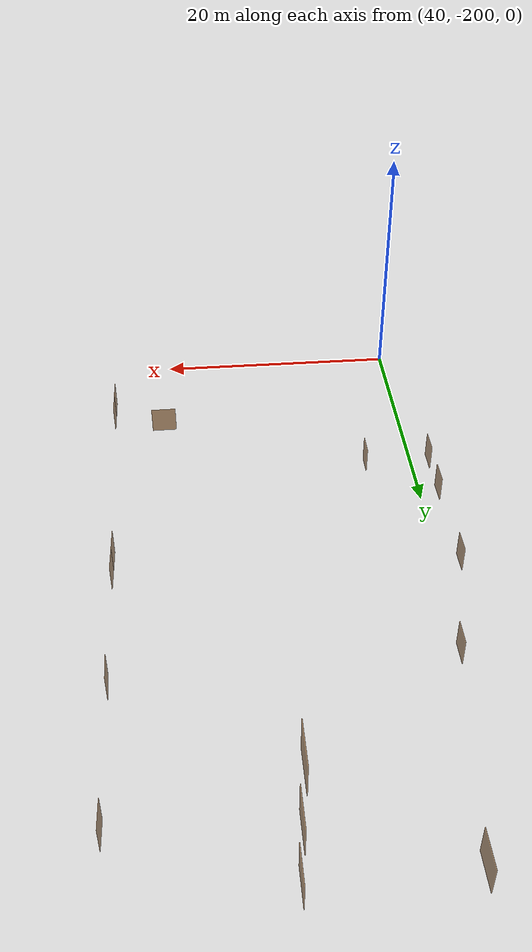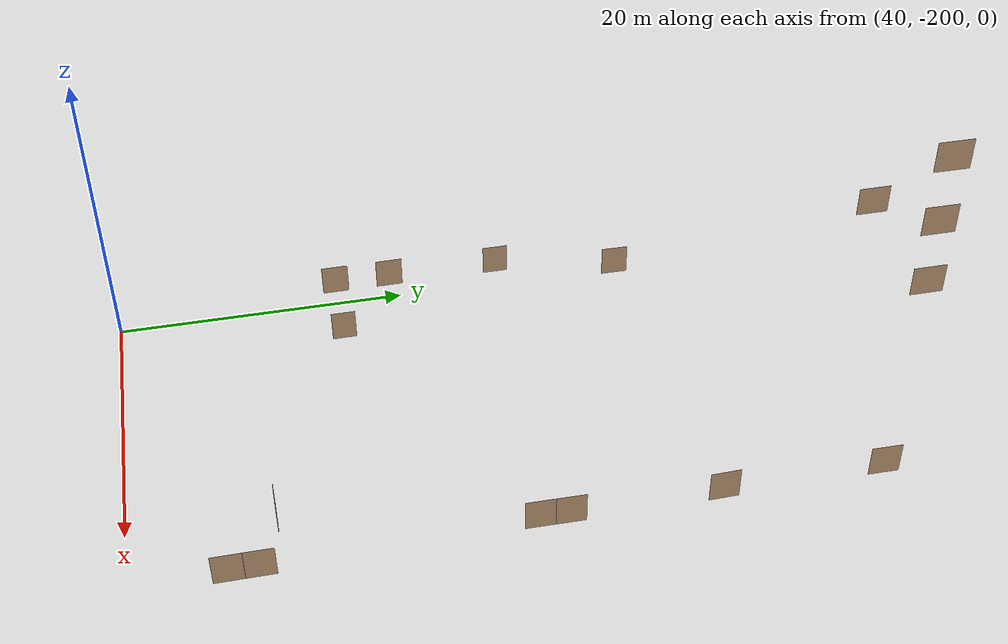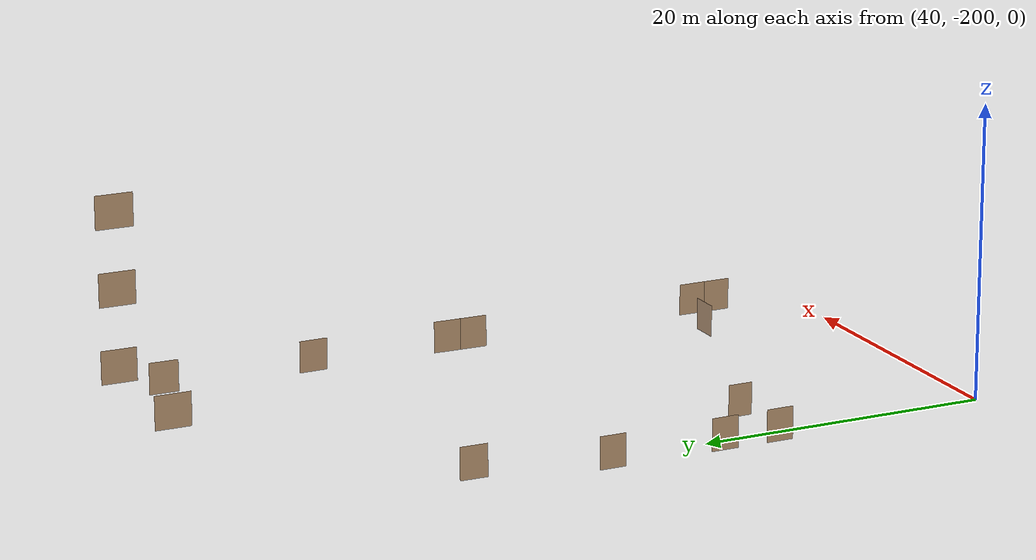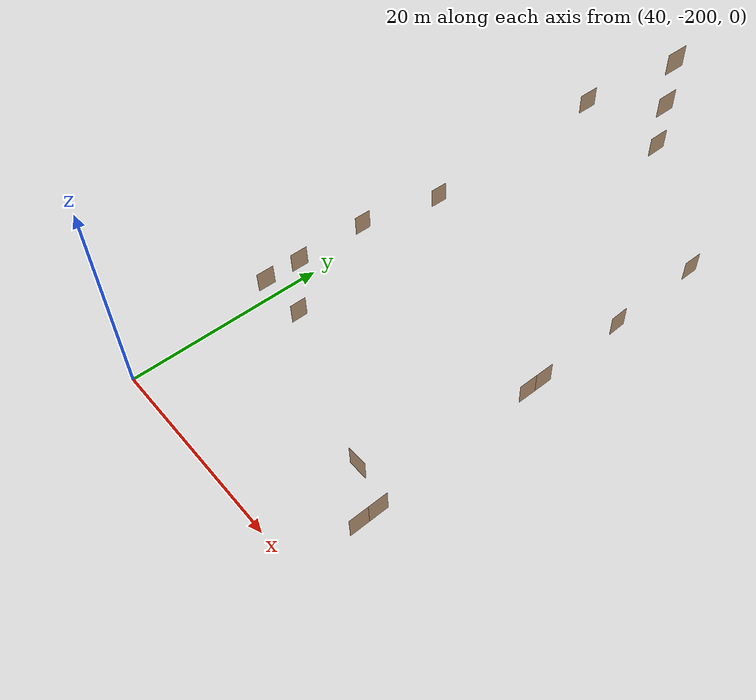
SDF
<sdf version="1.7">
 <world name="sim_world">
  <model name="puerta39">
   <pose>64.41179523894755 -174.04589224986574 0.0 0 0 -1.5864504981439664</pose>
   <link name="right">
    <pose>0.9644818736637308 0 1.11 0 0 0</pose>
    <visual name="right_visual">
     <geometry><box><size>1.9189637473274617 0.03 2.2</size></box></geometry>
     <material>
      <ambient>0.5 0.25 0 0.6</ambient>
      <diffuse>0.5 0.25 0 0.6</diffuse>
      <pbr><metal><metalness>0.0</metalness></metal></pbr>
     </material>
    </visual>
    <collision name="right_collision">
     <geometry><box><size>1.9189637473274617 0.03 2.2</size></box></geometry>
     <surface><contact><collide_bitmask>0x02</collide_bitmask></contact></surface>
    </collision>
    <inertial>
     <mass>50.0</mass>
     <inertia><ixx>20.17041666666667</ixx><iyy>35.5100910981544</iyy><izz>15.347174431487726</izz></inertia>
    </inertial>
   </link>
   <joint name="right_joint" type="revolute">
    <parent>world</parent>
    <child>right</child>
    <axis><xyz>0 0 -1</xyz><limit><lower>0</lower><upper>1.57</upper></limit></axis>
    <pose>0.9644818736637308 0 0 0 0 0</pose>
   </joint>
   <link name="left">
    <pose>-0.9644818736637308 0 1.11 0 0 0</pose>
    <visual name="left_visual">
     <geometry><box><size>1.9189637473274617 0.03 2.2</size></box></geometry>
     <material>
      <ambient>0.5 0.25 0 0.6</ambient>
      <diffuse>0.5 0.25 0 0.6</diffuse>
      <pbr><metal><metalness>0.0</metalness></metal></pbr>
     </material>
    </visual>
    <collision name="left_collision">
     <geometry><box><size>1.9189637473274617 0.03 2.2</size></box></geometry>
     <surface><contact><collide_bitmask>0x02</collide_bitmask></contact></surface>
    </collision>
    <inertial>
     <mass>50.0</mass>
     <inertia><ixx>20.17041666666667</ixx><iyy>35.5100910981544</iyy><izz>15.347174431487726</izz></inertia>
    </inertial>
   </link>
   <joint name="left_joint" type="revolute">
    <parent>world</parent>
    <child>left</child>
    <axis><xyz>0 0 -1</xyz><limit><lower>-1.57</lower><upper>0</upper></limit></axis>
    <pose>-0.9644818736637308 0 0 0 0 0</pose>
   </joint>
   <plugin name="register_component" filename="libregister_component.so">
    <component name="Door">
     <v_max_door>0.5</v_max_door>
     <a_max_door>0.3</a_max_door>
     <a_nom_door>0.15</a_nom_door>
     <dx_min_door>0.01</dx_min_door>
     <f_max_door>500.0</f_max_door>
     <ros_interface>true</ros_interface>
     <door name="puerta39" type="DoubleSwingDoor" left_joint_name="left_joint" right_joint_name="right_joint"/>
    </component>
   </plugin>
  </model>
  <model name="puerta40">
   <pose>64.78815106497225 -193.0206192947915 0.0 0 0 1.5706653632783407</pose>
   <link name="right">
    <pose>0.9566851701874391 0 1.11 0 0 0</pose>
    <visual name="right_visual">
     <geometry><box><size>1.9033703403748783 0.03 2.2</size></box></geometry>
     <material>
      <ambient>0.5 0.25 0 0.6</ambient>
      <diffuse>0.5 0.25 0 0.6</diffuse>
      <pbr><metal><metalness>0.0</metalness></metal></pbr>
     </material>
    </visual>
    <collision name="right_collision">
     <geometry><box><size>1.9033703403748783 0.03 2.2</size></box></geometry>
     <surface><contact><collide_bitmask>0x02</collide_bitmask></contact></surface>
    </collision>
    <inertial>
     <mass>50.0</mass>
     <inertia><ixx>20.17041666666667</ixx><iyy>35.26174438591159</iyy><izz>15.098827719244918</izz></inertia>
    </inertial>
   </link>
   <joint name="right_joint" type="revolute">
    <parent>world</parent>
    <child>right</child>
    <axis><xyz>0 0 -1</xyz><limit><lower>0</lower><upper>1.57</upper></limit></axis>
    <pose>0.9566851701874391 0 0 0 0 0</pose>
   </joint>
   <link name="left">
    <pose>-0.9566851701874391 0 1.11 0 0 0</pose>
    <visual name="left_visual">
     <geometry><box><size>1.9033703403748783 0.03 2.2</size></box></geometry>
     <material>
      <ambient>0.5 0.25 0 0.6</ambient>
      <diffuse>0.5 0.25 0 0.6</diffuse>
      <pbr><metal><metalness>0.0</metalness></metal></pbr>
     </material>
    </visual>
    <collision name="left_collision">
     <geometry><box><size>1.9033703403748783 0.03 2.2</size></box></geometry>
     <surface><contact><collide_bitmask>0x02</collide_bitmask></contact></surface>
    </collision>
    <inertial>
     <mass>50.0</mass>
     <inertia><ixx>20.17041666666667</ixx><iyy>35.26174438591159</iyy><izz>15.098827719244918</izz></inertia>
    </inertial>
   </link>
   <joint name="left_joint" type="revolute">
    <parent>world</parent>
    <child>left</child>
    <axis><xyz>0 0 -1</xyz><limit><lower>-1.57</lower><upper>0</upper></limit></axis>
    <pose>-0.9566851701874391 0 0 0 0 0</pose>
   </joint>
   <plugin name="register_component" filename="libregister_component.so">
    <component name="Door">
     <v_max_door>0.5</v_max_door>
     <a_max_door>0.3</a_max_door>
     <a_nom_door>0.15</a_nom_door>
     <dx_min_door>0.01</dx_min_door>
     <f_max_door>500.0</f_max_door>
     <ros_interface>true</ros_interface>
     <door name="puerta40" type="DoubleSwingDoor" left_joint_name="left_joint" right_joint_name="right_joint"/>
    </component>
   </plugin>
  </model>
  <model name="puerta72">
   <pose>64.41070341865044 -152.64116699480937 0.0 0 0 -1.5859111699131794</pose>
   <link name="right">
    <pose>0 0 1.11 0 0 0</pose>
    <visual name="right_visual">
     <geometry><box><size>2.0363407816911288 0.03 2.2</size></box></geometry>
     <material>
      <ambient>0.5 0.25 0 0.6</ambient>
      <diffuse>0.5 0.25 0 0.6</diffuse>
      <pbr><metal><metalness>0.0</metalness></metal></pbr>
     </material>
    </visual>
    <collision name="right_collision">
     <geometry><box><size>2.0363407816911288 0.03 2.2</size></box></geometry>
     <surface><contact><collide_bitmask>0x02</collide_bitmask></contact></surface>
    </collision>
    <inertial>
     <mass>50.0</mass>
     <inertia><ixx>20.17041666666667</ixx><iyy>37.444515746576826</iyy><izz>17.28159907991016</izz></inertia>
    </inertial>
   </link>
   <joint name="right_joint" type="revolute">
    <parent>world</parent>
    <child>right</child>
    <axis><xyz>0 0 -1</xyz><limit><lower>0</lower><upper>1.57</upper></limit></axis>
    <pose>1.0231703908455643 0 0 0 0 0</pose>
   </joint>
   <plugin name="register_component" filename="libregister_component.so">
    <component name="Door">
     <v_max_door>0.5</v_max_door>
     <a_max_door>0.3</a_max_door>
     <a_nom_door>0.15</a_nom_door>
     <dx_min_door>0.01</dx_min_door>
     <f_max_door>500.0</f_max_door>
     <ros_interface>true</ros_interface>
     <door name="puerta72" type="SwingDoor" left_joint_name="empty_joint" right_joint_name="right_joint"/>
    </component>
   </plugin>
  </model>
  <model name="puerta73">
   <pose>64.4186146411312 -163.26044388759618 0.0 0 0 -1.547284805781661</pose>
   <link name="right">
    <pose>0 0 1.11 0 0 0</pose>
    <visual name="right_visual">
     <geometry><box><size>1.9786290936284832 0.03 2.2</size></box></geometry>
     <material>
      <ambient>0.5 0.25 0 0.6</ambient>
      <diffuse>0.5 0.25 0 0.6</diffuse>
      <pbr><metal><metalness>0.0</metalness></metal></pbr>
     </material>
    </visual>
    <collision name="right_collision">
     <geometry><box><size>1.9786290936284832 0.03 2.2</size></box></geometry>
     <surface><contact><collide_bitmask>0x02</collide_bitmask></contact></surface>
    </collision>
    <inertial>
     <mass>50.0</mass>
     <inertia><ixx>20.17041666666667</ixx><iyy>36.479054542304475</iyy><izz>16.316137875637803</izz></inertia>
    </inertial>
   </link>
   <joint name="right_joint" type="revolute">
    <parent>world</parent>
    <child>right</child>
    <axis><xyz>0 0 -1</xyz><limit><lower>0</lower><upper>1.57</upper></limit></axis>
    <pose>0.9943145468142416 0 0 0 0 0</pose>
   </joint>
   <plugin name="register_component" filename="libregister_component.so">
    <component name="Door">
     <v_max_door>0.5</v_max_door>
     <a_max_door>0.3</a_max_door>
     <a_nom_door>0.15</a_nom_door>
     <dx_min_door>0.01</dx_min_door>
     <f_max_door>500.0</f_max_door>
     <ros_interface>true</ros_interface>
     <door name="puerta73" type="SwingDoor" left_joint_name="empty_joint" right_joint_name="right_joint"/>
    </component>
   </plugin>
  </model>
  <model name="puerta74">
   <pose>40.54846966171469 -164.11424735994274 0.0 0 0 -1.582914761738406</pose>
   <link name="right">
    <pose>0 0 1.11 0 0 0</pose>
    <visual name="right_visual">
     <geometry><box><size>1.8776274167656888 0.03 2.2</size></box></geometry>
     <material>
      <ambient>0.5 0.25 0 0.6</ambient>
      <diffuse>0.5 0.25 0 0.6</diffuse>
      <pbr><metal><metalness>0.0</metalness></metal></pbr>
     </material>
    </visual>
    <collision name="right_collision">
     <geometry><box><size>1.8776274167656888 0.03 2.2</size></box></geometry>
     <surface><contact><collide_bitmask>0x02</collide_bitmask></contact></surface>
    </collision>
    <inertial>
     <mass>50.0</mass>
     <inertia><ixx>20.17041666666667</ixx><iyy>34.85618631745914</iyy><izz>14.693269650792475</izz></inertia>
    </inertial>
   </link>
   <joint name="right_joint" type="revolute">
    <parent>world</parent>
    <child>right</child>
    <axis><xyz>0 0 -1</xyz><limit><lower>0</lower><upper>1.57</upper></limit></axis>
    <pose>0.9438137083828444 0 0 0 0 0</pose>
   </joint>
   <plugin name="register_component" filename="libregister_component.so">
    <component name="Door">
     <v_max_door>0.5</v_max_door>
     <a_max_door>0.3</a_max_door>
     <a_nom_door>0.15</a_nom_door>
     <dx_min_door>0.01</dx_min_door>
     <f_max_door>500.0</f_max_door>
     <ros_interface>true</ros_interface>
     <door name="puerta74" type="SwingDoor" left_joint_name="empty_joint" right_joint_name="right_joint"/>
    </component>
   </plugin>
  </model>
  <model name="puerta75">
   <pose>38.571684267048504 -172.71329872919276 0.0 0 0 -1.5707963267948966</pose>
   <link name="right">
    <pose>0 0 1.11 0 0 0</pose>
    <visual name="right_visual">
     <geometry><box><size>1.7947610524431548 0.03 2.2</size></box></geometry>
     <material>
      <ambient>0.5 0.25 0 0.6</ambient>
      <diffuse>0.5 0.25 0 0.6</diffuse>
      <pbr><metal><metalness>0.0</metalness></metal></pbr>
     </material>
    </visual>
    <collision name="right_collision">
     <geometry><box><size>1.7947610524431548 0.03 2.2</size></box></geometry>
     <surface><contact><collide_bitmask>0x02</collide_bitmask></contact></surface>
    </collision>
    <inertial>
     <mass>50.0</mass>
     <inertia><ixx>20.17041666666667</ixx><iyy>33.58819681402859</iyy><izz>13.42528014736192</izz></inertia>
    </inertial>
   </link>
   <joint name="right_joint" type="revolute">
    <parent>world</parent>
    <child>right</child>
    <axis><xyz>0 0 1</xyz><limit><lower>0</lower><upper>1.57</upper></limit></axis>
    <pose>0.9023805262215774 0 0 0 0 0</pose>
   </joint>
   <plugin name="register_component" filename="libregister_component.so">
    <component name="Door">
     <v_max_door>0.5</v_max_door>
     <a_max_door>0.3</a_max_door>
     <a_nom_door>0.15</a_nom_door>
     <dx_min_door>0.01</dx_min_door>
     <f_max_door>500.0</f_max_door>
     <ros_interface>true</ros_interface>
     <door name="puerta75" type="SwingDoor" left_joint_name="empty_joint" right_joint_name="right_joint"/>
    </component>
   </plugin>
  </model>
  <model name="puerta76">
   <pose>38.56130302487918 -180.61496330767852 0.0 0 0 -1.5651657985092033</pose>
   <link name="right">
    <pose>0 0 1.11 0 0 0</pose>
    <visual name="right_visual">
     <geometry><box><size>1.8718984542827075 0.03 2.2</size></box></geometry>
     <material>
      <ambient>0.5 0.25 0 0.6</ambient>
      <diffuse>0.5 0.25 0 0.6</diffuse>
      <pbr><metal><metalness>0.0</metalness></metal></pbr>
     </material>
    </visual>
    <collision name="right_collision">
     <geometry><box><size>1.8718984542827075 0.03 2.2</size></box></geometry>
     <surface><contact><collide_bitmask>0x02</collide_bitmask></contact></surface>
    </collision>
    <inertial>
     <mass>50.0</mass>
     <inertia><ixx>20.17041666666667</ixx><iyy>34.766682596441626</iyy><izz>14.603765929774958</izz></inertia>
    </inertial>
   </link>
   <joint name="right_joint" type="revolute">
    <parent>world</parent>
    <child>right</child>
    <axis><xyz>0 0 1</xyz><limit><lower>0</lower><upper>1.57</upper></limit></axis>
    <pose>0.9409492271413538 0 0 0 0 0</pose>
   </joint>
   <plugin name="register_component" filename="libregister_component.so">
    <component name="Door">
     <v_max_door>0.5</v_max_door>
     <a_max_door>0.3</a_max_door>
     <a_nom_door>0.15</a_nom_door>
     <dx_min_door>0.01</dx_min_door>
     <f_max_door>500.0</f_max_door>
     <ros_interface>true</ros_interface>
     <door name="puerta76" type="SwingDoor" left_joint_name="empty_joint" right_joint_name="right_joint"/>
    </component>
   </plugin>
  </model>
  <model name="puerta77">
   <pose>38.55967424378021 -184.54864864864865 0.0 0 0 1.5741072561138192</pose>
   <link name="right">
    <pose>0 0 1.11 0 0 0</pose>
    <visual name="right_visual">
     <geometry><box><size>1.8604595094200334 0.03 2.2</size></box></geometry>
     <material>
      <ambient>0.5 0.25 0 0.6</ambient>
      <diffuse>0.5 0.25 0 0.6</diffuse>
      <pbr><metal><metalness>0.0</metalness></metal></pbr>
     </material>
    </visual>
    <collision name="right_collision">
     <geometry><box><size>1.8604595094200334 0.03 2.2</size></box></geometry>
     <surface><contact><collide_bitmask>0x02</collide_bitmask></contact></surface>
    </collision>
    <inertial>
     <mass>50.0</mass>
     <inertia><ixx>20.17041666666667</ixx><iyy>34.58878994246431</iyy><izz>14.425873275797633</izz></inertia>
    </inertial>
   </link>
   <joint name="right_joint" type="revolute">
    <parent>world</parent>
    <child>right</child>
    <axis><xyz>0 0 -1</xyz><limit><lower>0</lower><upper>1.57</upper></limit></axis>
    <pose>0.9352297547100167 0 0 0 0 0</pose>
   </joint>
   <plugin name="register_component" filename="libregister_component.so">
    <component name="Door">
     <v_max_door>0.5</v_max_door>
     <a_max_door>0.3</a_max_door>
     <a_nom_door>0.15</a_nom_door>
     <dx_min_door>0.01</dx_min_door>
     <f_max_door>500.0</f_max_door>
     <ros_interface>true</ros_interface>
     <door name="puerta77" type="SwingDoor" left_joint_name="empty_joint" right_joint_name="right_joint"/>
    </component>
   </plugin>
  </model>
  <model name="puerta78">
   <pose>43.88469661714695 -184.56318238768569 0.0 0 0 1.5707963267948966</pose>
   <link name="right">
    <pose>0 0 1.11 0 0 0</pose>
    <visual name="right_visual">
     <geometry><box><size>1.6649955253266364 0.03 2.2</size></box></geometry>
     <material>
      <ambient>0.5 0.25 0 0.6</ambient>
      <diffuse>0.5 0.25 0 0.6</diffuse>
      <pbr><metal><metalness>0.0</metalness></metal></pbr>
     </material>
    </visual>
    <collision name="right_collision">
     <geometry><box><size>1.6649955253266364 0.03 2.2</size></box></geometry>
     <surface><contact><collide_bitmask>0x02</collide_bitmask></contact></surface>
    </collision>
    <inertial>
     <mass>50.0</mass>
     <inertia><ixx>20.17041666666667</ixx><iyy>31.717542080657182</iyy><izz>11.55462541399051</izz></inertia>
    </inertial>
   </link>
   <joint name="right_joint" type="revolute">
    <parent>world</parent>
    <child>right</child>
    <axis><xyz>0 0 1</xyz><limit><lower>0</lower><upper>1.57</upper></limit></axis>
    <pose>0.8374977626633182 0 0 0 0 0</pose>
   </joint>
   <plugin name="register_component" filename="libregister_component.so">
    <component name="Door">
     <v_max_door>0.5</v_max_door>
     <a_max_door>0.3</a_max_door>
     <a_nom_door>0.15</a_nom_door>
     <dx_min_door>0.01</dx_min_door>
     <f_max_door>500.0</f_max_door>
     <ros_interface>true</ros_interface>
     <door name="puerta78" type="SwingDoor" left_joint_name="empty_joint" right_joint_name="right_joint"/>
    </component>
   </plugin>
  </model>
  <model name="puerta79">
   <pose>60.52491498120638 -190.7836405942366 0.0 0 0 -3.1347968287610044</pose>
   <link name="right">
    <pose>0 0 1.11 0 0 0</pose>
    <visual name="right_visual">
     <geometry><box><size>2.0338273991441067 0.03 2.2</size></box></geometry>
     <material>
      <ambient>0.5 0.25 0 0.6</ambient>
      <diffuse>0.5 0.25 0 0.6</diffuse>
      <pbr><metal><metalness>0.0</metalness></metal></pbr>
     </material>
    </visual>
    <collision name="right_collision">
     <geometry><box><size>2.0338273991441067 0.03 2.2</size></box></geometry>
     <surface><contact><collide_bitmask>0x02</collide_bitmask></contact></surface>
    </collision>
    <inertial>
     <mass>50.0</mass>
     <inertia><ixx>20.17041666666667</ixx><iyy>37.40189120628868</iyy><izz>17.238974539622006</izz></inertia>
    </inertial>
   </link>
   <joint name="right_joint" type="revolute">
    <parent>world</parent>
    <child>right</child>
    <axis><xyz>0 0 -1</xyz><limit><lower>0</lower><upper>1.57</upper></limit></axis>
    <pose>1.0219136995720532 0 0 0 0 0</pose>
   </joint>
   <plugin name="register_component" filename="libregister_component.so">
    <component name="Door">
     <v_max_door>0.5</v_max_door>
     <a_max_door>0.3</a_max_door>
     <a_nom_door>0.15</a_nom_door>
     <dx_min_door>0.01</dx_min_door>
     <f_max_door>500.0</f_max_door>
     <ros_interface>true</ros_interface>
     <door name="puerta79" type="SwingDoor" left_joint_name="empty_joint" right_joint_name="right_joint"/>
    </component>
   </plugin>
  </model>
  <model name="puerta3178">
   <pose>43.93663592397131 -145.8317505956648 5.0 0 0 -1.5707850723177186</pose>
   <link name="right">
    <pose>0 0 1.11 0 0 0</pose>
    <visual name="right_visual">
     <geometry><box><size>2.359396111426104 0.03 2.2</size></box></geometry>
     <material>
      <ambient>0.5 0.25 0 0.6</ambient>
      <diffuse>0.5 0.25 0 0.6</diffuse>
      <pbr><metal><metalness>0.0</metalness></metal></pbr>
     </material>
    </visual>
    <collision name="right_collision">
     <geometry><box><size>2.359396111426104 0.03 2.2</size></box></geometry>
     <surface><contact><collide_bitmask>0x02</collide_bitmask></contact></surface>
    </collision>
    <inertial>
     <mass>50.0</mass>
     <inertia><ixx>20.17041666666667</ixx><iyy>43.361458377552594</iyy><izz>23.198541710885923</izz></inertia>
    </inertial>
   </link>
   <joint name="right_joint" type="revolute">
    <parent>world</parent>
    <child>right</child>
    <axis><xyz>0 0 -1</xyz><limit><lower>0</lower><upper>1.57</upper></limit></axis>
    <pose>1.184698055713052 0 0 0 0 0</pose>
   </joint>
   <plugin name="register_component" filename="libregister_component.so">
    <component name="Door">
     <v_max_door>0.5</v_max_door>
     <a_max_door>0.3</a_max_door>
     <a_nom_door>0.15</a_nom_door>
     <dx_min_door>0.01</dx_min_door>
     <f_max_door>500.0</f_max_door>
     <ros_interface>true</ros_interface>
     <door name="puerta3178" type="SwingDoor" left_joint_name="empty_joint" right_joint_name="right_joint"/>
    </component>
   </plugin>
  </model>
  <model name="puerta3179">
   <pose>53.4948002032872 -145.8155341799054 5.0 0 0 -1.5707850723177186</pose>
   <link name="right">
    <pose>0 0 1.11 0 0 0</pose>
    <visual name="right_visual">
     <geometry><box><size>2.3593961114260757 0.03 2.2</size></box></geometry>
     <material>
      <ambient>0.5 0.25 0 0.6</ambient>
      <diffuse>0.5 0.25 0 0.6</diffuse>
      <pbr><metal><metalness>0.0</metalness></metal></pbr>
     </material>
    </visual>
    <collision name="right_collision">
     <geometry><box><size>2.3593961114260757 0.03 2.2</size></box></geometry>
     <surface><contact><collide_bitmask>0x02</collide_bitmask></contact></surface>
    </collision>
    <inertial>
     <mass>50.0</mass>
     <inertia><ixx>20.17041666666667</ixx><iyy>43.36145837755203</iyy><izz>23.198541710885365</izz></inertia>
    </inertial>
   </link>
   <joint name="right_joint" type="revolute">
    <parent>world</parent>
    <child>right</child>
    <axis><xyz>0 0 1</xyz><limit><lower>0</lower><upper>1.57</upper></limit></axis>
    <pose>1.1846980557130378 0 0 0 0 0</pose>
   </joint>
   <plugin name="register_component" filename="libregister_component.so">
    <component name="Door">
     <v_max_door>0.5</v_max_door>
     <a_max_door>0.3</a_max_door>
     <a_nom_door>0.15</a_nom_door>
     <dx_min_door>0.01</dx_min_door>
     <f_max_door>500.0</f_max_door>
     <ros_interface>true</ros_interface>
     <door name="puerta3179" type="SwingDoor" left_joint_name="empty_joint" right_joint_name="right_joint"/>
    </component>
   </plugin>
  </model>
  <model name="puerta5276">
   <pose>53.53224768784596 -145.8681291775315 10.0 0 0 -1.5708010176719673</pose>
   <link name="right">
    <pose>0 0 1.11 0 0 0</pose>
    <visual name="right_visual">
     <geometry><box><size>2.407045618499533 0.03 2.2</size></box></geometry>
     <material>
      <ambient>0.5 0.25 0 0.6</ambient>
      <diffuse>0.5 0.25 0 0.6</diffuse>
      <pbr><metal><metalness>0.0</metalness></metal></pbr>
     </material>
    </visual>
    <collision name="right_collision">
     <geometry><box><size>2.407045618499533 0.03 2.2</size></box></geometry>
     <surface><contact><collide_bitmask>0x02</collide_bitmask></contact></surface>
    </collision>
    <inertial>
     <mass>50.0</mass>
     <inertia><ixx>20.17041666666667</ixx><iyy>44.30778587307417</iyy><izz>24.1448692064075</izz></inertia>
    </inertial>
   </link>
   <joint name="right_joint" type="revolute">
    <parent>world</parent>
    <child>right</child>
    <axis><xyz>0 0 1</xyz><limit><lower>0</lower><upper>1.57</upper></limit></axis>
    <pose>1.2085228092497664 0 0 0 0 0</pose>
   </joint>
   <plugin name="register_component" filename="libregister_component.so">
    <component name="Door">
     <v_max_door>0.5</v_max_door>
     <a_max_door>0.3</a_max_door>
     <a_nom_door>0.15</a_nom_door>
     <dx_min_door>0.01</dx_min_door>
     <f_max_door>500.0</f_max_door>
     <ros_interface>true</ros_interface>
     <door name="puerta5276" type="SwingDoor" left_joint_name="empty_joint" right_joint_name="right_joint"/>
    </component>
   </plugin>
  </model>
  <model name="puerta7213">
   <pose>53.54011319911778 -145.829324568125 15.0 0 0 -1.5708363076981087</pose>
   <link name="right">
    <pose>0 0 1.11 0 0 0</pose>
    <visual name="right_visual">
     <geometry><box><size>2.4837297490181505 0.03 2.2</size></box></geometry>
     <material>
      <ambient>0.5 0.25 0 0.6</ambient>
      <diffuse>0.5 0.25 0 0.6</diffuse>
      <pbr><metal><metalness>0.0</metalness></metal></pbr>
     </material>
    </visual>
    <collision name="right_collision">
     <geometry><box><size>2.4837297490181505 0.03 2.2</size></box></geometry>
     <surface><contact><collide_bitmask>0x02</collide_bitmask></contact></surface>
    </collision>
    <inertial>
     <mass>50.0</mass>
     <inertia><ixx>20.17041666666667</ixx><iyy>45.870472775657355</iyy><izz>25.707556108990687</izz></inertia>
    </inertial>
   </link>
   <joint name="right_joint" type="revolute">
    <parent>world</parent>
    <child>right</child>
    <axis><xyz>0 0 1</xyz><limit><lower>0</lower><upper>1.57</upper></limit></axis>
    <pose>1.2468648745090751 0 0 0 0 0</pose>
   </joint>
   <plugin name="register_component" filename="libregister_component.so">
    <component name="Door">
     <v_max_door>0.5</v_max_door>
     <a_max_door>0.3</a_max_door>
     <a_nom_door>0.15</a_nom_door>
     <dx_min_door>0.01</dx_min_door>
     <f_max_door>500.0</f_max_door>
     <ros_interface>true</ros_interface>
     <door name="puerta7213" type="SwingDoor" left_joint_name="empty_joint" right_joint_name="right_joint"/>
    </component>
   </plugin>
  </model>
 </world>
</sdf>
